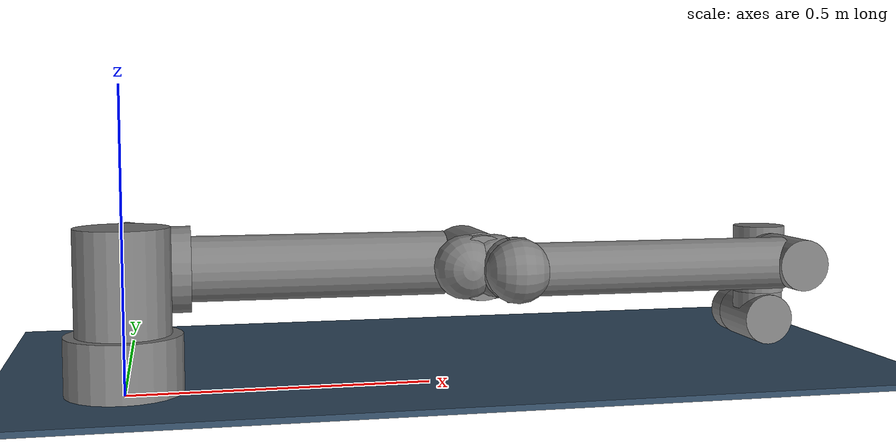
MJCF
<mujoco model="C:/Users/Caleb Brooks/Downloads/UR10e.urdf">
  <!-- 1. The Silver Bullet: Autolimit and boundmass unfreezes the zero-mass compiler lock -->
  <compiler angle="radian" autolimits="true" balanceinertia="true" boundmass="0.001"/>

  <worldbody>
    <geom size="5 5 0.005" type="box" rgba="0.2 0.3 0.4 1"/>
    <geom size="0.095 0.05" pos="0 0 0.05" quat="3.26795e-07 -1 0 0" type="cylinder"/>
    <body name="shoulder_link" pos="0 0 0.181">
      <joint name="shoulder_pan_joint" range="-6.28319 6.28319" actuatorfrcrange="-330 330"/>
      <geom size="0.077 0.0915" quat="3.26795e-07 -1 0 0" type="cylinder"/>
      <geom size="0.076 0.0465" pos="0 0.05 0" quat="0.707107 0.707107 0 0" type="cylinder"/>
      <body name="upper_arm_link" pos="0 0.176 0" quat="0.707107 0 0.707107 0">
        <joint name="shoulder_lift_joint" range="-6.28319 6.28319" actuatorfrcrange="-330 330" axis="0 1 0"/>
        <geom size="0.058 0.2315" pos="0 0 0.33" quat="3.26795e-07 -1 0 0" type="cylinder"/>
        <geom size="0.076 0.05" pos="0 0 0.06" quat="3.26795e-07 -1 0 0" type="cylinder"/>
        <geom size="0.077 0.0915" quat="0.707107 -0.707107 0 0" type="cylinder"/>
        <geom size="0.061 0.0745" pos="0 -0.005 0.612" quat="0.707107 -0.707107 0 0" type="cylinder"/>
        <body name="forearm_link" pos="0 -0.137 0.613">
          <joint name="elbow_joint" range="-3.14159 3.14159" actuatorfrcrange="-150 150" axis="0 1 0"/>
          <geom size="0.047 0.245" pos="0 0 0.307" quat="3.26795e-07 -1 0 0" type="cylinder"/>
          <geom size="0.046 0.0645" pos="0 0.009 0.57" quat="0.707107 -0.707107 0 0" type="cylinder"/>
          <geom size="0.058 0.025" pos="0 0.06 0" quat="0.707107 -0.707107 0 0" type="cylinder"/>

          <!-- FIXED: Added type="sphere" to prevent the file parsing crash -->
          <geom size="0.058" type="sphere" pos="0 0.06 -0.025" quat="0.707107 -0.707107 0 0"/>
          <geom size="0.058" type="sphere" pos="0 0.06 0.025" quat="0.707107 -0.707107 0 0"/>

          <geom size="0.057 0.015" pos="0 0 0.05" type="cylinder"/>

          <!-- FIXED: Added type="sphere" to anchor the forearm end joints -->
          <geom size="0.057" type="sphere" pos="0 0.015 0.05"/>
          <geom size="0.057" type="sphere" pos="0 -0.015 0.05"/>

          <body name="wrist_1_link" pos="0 0 0.571" quat="0.707107 0 0.707107 0">
            <joint name="wrist_1_joint" range="-6.28319 6.28319" actuatorfrcrange="-54 54" axis="0 1 0"/>
            <geom size="0.045 0.0375" pos="0 0.095 0" quat="0.707107 -0.707107 0 0" type="cylinder"/>
            <geom size="0.048 0.063" pos="0 0.134 0.007" quat="3.26795e-07 -1 0 0" type="cylinder"/>
            <body name="wrist_2_link" pos="0 0.135 0">
              <joint name="wrist_2_joint" range="-6.28319 6.28319" actuatorfrcrange="-54 54"/>
              <geom size="0.047 0.06" pos="0 0.007 0.1195" quat="0.707107 -0.707107 0 0" type="cylinder"/>
              <geom size="0.046 0.0215" pos="0 0 0.0805" quat="3.26795e-07 -1 0 0" type="cylinder"/>
              <body name="wrist_3_link" pos="0 0 0.12">
                <joint name="wrist_3_joint" range="-6.28319 6.28319" actuatorfrcrange="-54 54" axis="0 1 0"/>
                <geom size="0.045 0.024" pos="0 0.086 0" quat="0.707107 -0.707107 0 0" type="cylinder"/>
                <geom size="0.032 0.009" pos="0 0.109 0" quat="0.707107 -0.707107 0 0" type="cylinder"/>
              </body>
            </body>
          </body>
        </body>
      </body>
    </body>
  </worldbody>
</mujoco>
